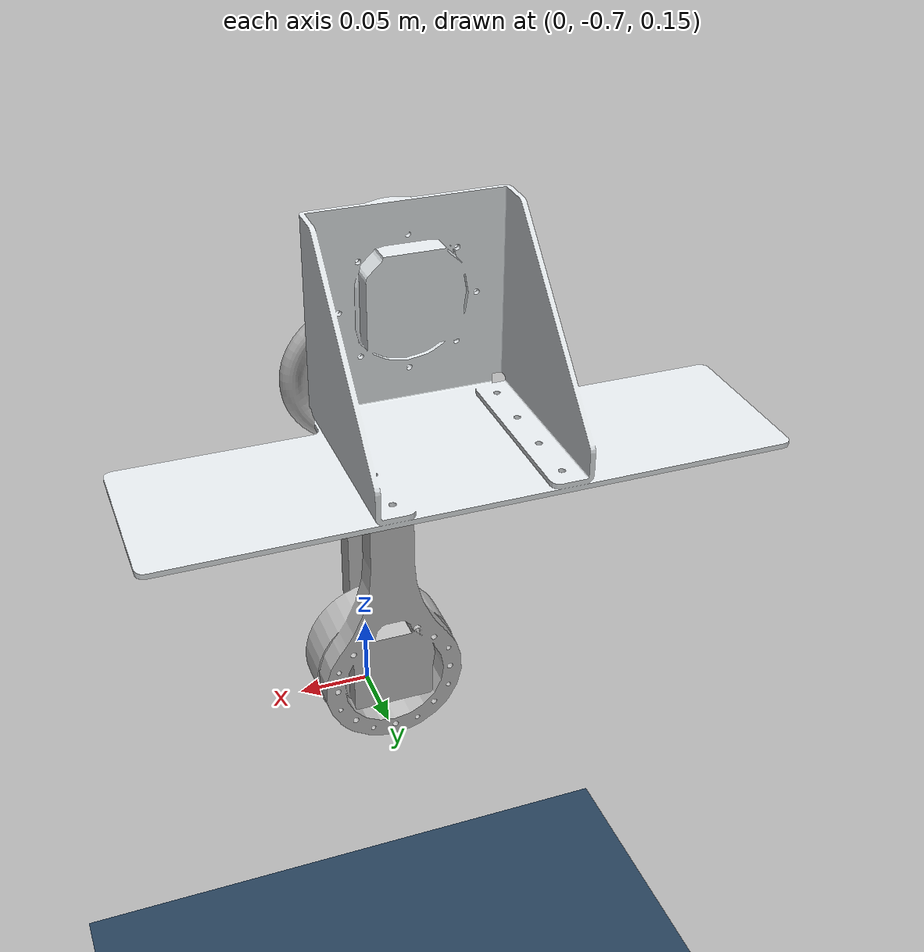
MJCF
<mujoco model="double_pendulum_scene">
  <include file="double_pendulum.xml"/>

  <statistic center="0 0 1.5" extent="3.0"/>

  <visual>
    <headlight diffuse="0.6 0.6 0.6" ambient="0.3 0.3 0.3" specular="0 0 0"/>
    <rgba haze="0.15 0.25 0.35 1"/>
    <global elevation="0.0"/>
  </visual>

  <asset>
    <texture type="skybox" builtin="gradient" rgb1="0.3 0.5 0.7" rgb2="0 0 0" width="512" height="3072"/>
    <texture type="2d" name="groundplane" builtin="checker" mark="edge" rgb1="0.2 0.3 0.4" rgb2="0.1 0.2 0.3"
      markrgb="0.8 0.8 0.8" width="300" height="300"/>
    <material name="groundplane" texture="groundplane" texuniform="true" texrepeat="5 5" reflectance="0.2"/>
  </asset>

  <worldbody>
    <light pos="0 0 4" dir="0 0 -1" directional="false"/>
    <geom name="floor" size="0 0 .125" type="plane" material="groundplane" pos="0 0 -0.1"/>
  </worldbody>

</mujoco>

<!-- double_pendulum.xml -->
<mujoco model="double_pendulum">
  <compiler meshdir="meshes"/> <!-- Added mesh directory -->
  <option timestep="0.01" iterations="1" ls_iterations="5">
    <flag contact="disable"/>
  </option>

  <asset>
    <mesh name="base_link_mesh" file="base_link.STL" maxhullvert="20"/>
    <mesh name="link1_mesh" file="Link1.STL" maxhullvert="20"/>
    <mesh name="link2_mesh" file="Link2.STL" maxhullvert="20"/>
    <mesh name="weight_mesh" file="Weight.STL" maxhullvert="20"/>
  </asset>

  <worldbody>
    <body name="base_link" pos="0 -0.6 0.5" euler="0 0 -90">
      <inertial pos="-0.025147 0 -0.021712" mass="1.0806" fullinertia="0.0052004 0.001836 0.0051241 0 -0.00037275 0"/>
      <geom type="mesh" mesh="base_link_mesh" rgba="0.89804 0.91765 0.92941 1"/>
      <body name="Link1" pos="0.0342 0 0"  >
        <inertial pos="0 0 -0.27401" mass="0.608" diaginertia="0.05472 0.05472 0.05472"/>
        <joint name="Joint1" type="hinge" pos="0 0 0" axis="1 0 0" damping="0.08089" frictionloss="0.09335"/>
        <geom type="mesh" mesh="link1_mesh" rgba="0.75294 0.75294 0.75294 1"/>
        <body name="Link2" pos="0.0522 0 -0.3">
            <inertial pos="0 0 0.16635" mass="0.6306" diaginertia="0.02522 0.02522 0.02522"/>
            <joint name="Joint2" type="hinge" pos="0 0 0" axis="1 0 0" damping="0.000" frictionloss="0.1865"/>
            <geom type="mesh" mesh="link2_mesh" rgba="0.75294 0.75294 0.75294 1"/>
            <body name="Weight" pos="0 0 0">
                <inertial pos="0.010583 0 0" mass="0" diaginertia="0 0 0"/>
                <geom type="mesh" mesh="weight_mesh" rgba="0.69804 0.69804 0.69804 1"/>
                <site name="tip" pos="0 0 0.2" size="0.01"/>
            </body>
        </body>
      </body>
    </body>
  </worldbody>

  <actuator>
    <motor name="Joint1_actuator" joint="Joint1" gear="1" ctrllimited="true" ctrlrange="-16.0 16.0"/>
  </actuator>

  <equality/>
</mujoco>
